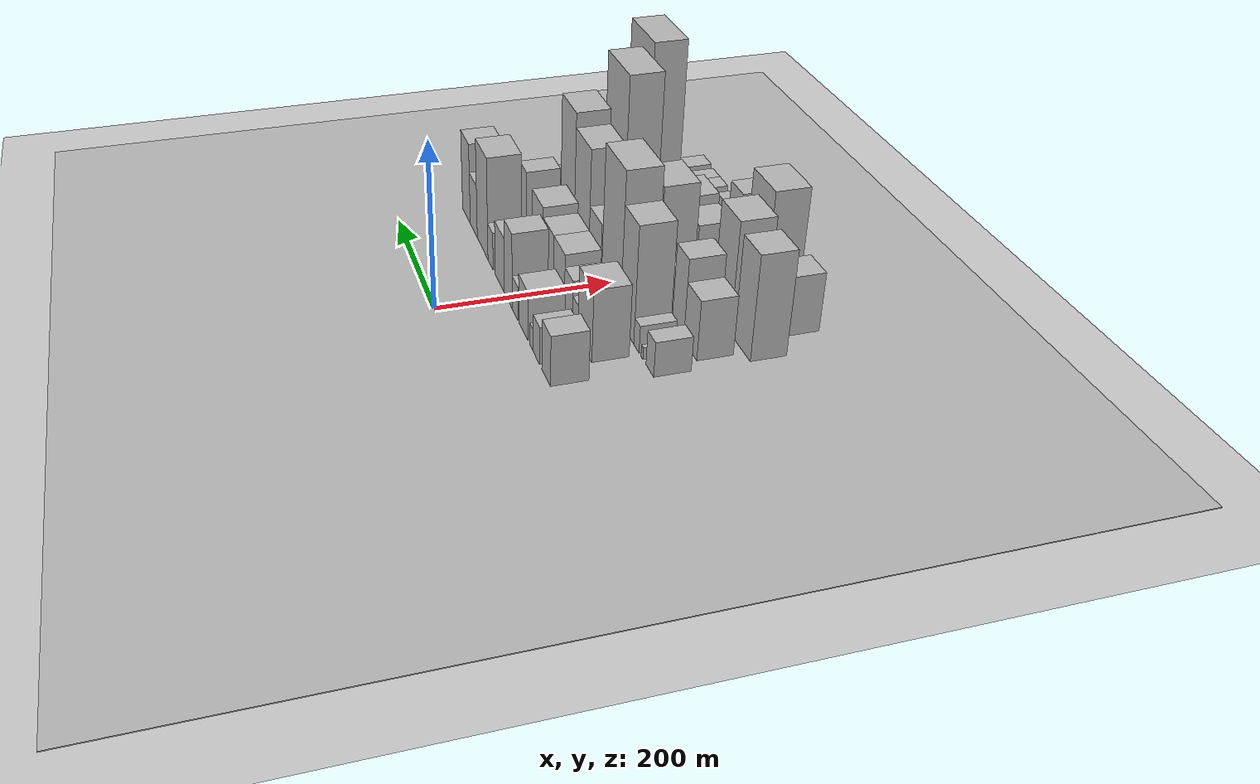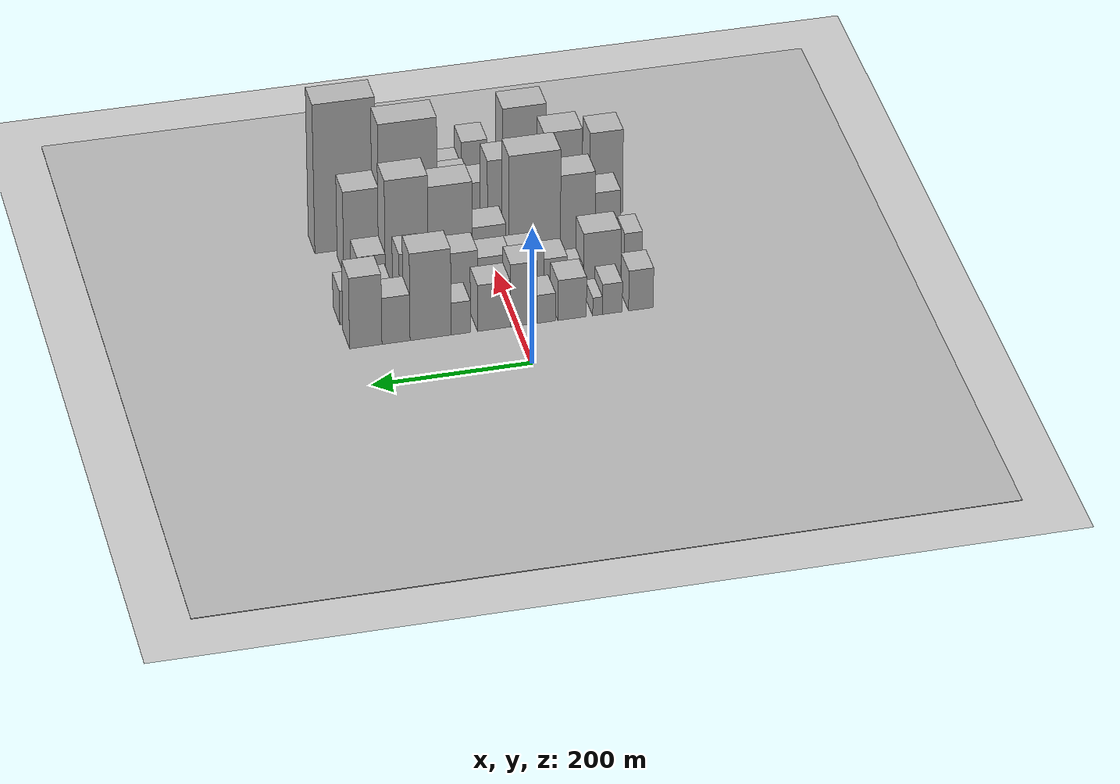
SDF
<sdf version="1.6">
 <world name="default">
  <include><name>ground_plane_1</name><uri>model://HANNAS_ground_plane</uri></include>
  <include>
   <name>ground_plane_2</name>
   <uri>model://HANNAS_ground_plane</uri>
   <pose>100 0 0  0 0 0</pose>
  </include>
  <model name="building_21">
   <static>1</static>
   <pose>100.0000 -155.4056 0 0.000000 0.000000 0.000000</pose>
   <link name="link">
    <pose>0 0 30.00 0 0 0</pose>
    <collision name="collision"><geometry><box><size>40.0000 31.2315 60.0000</size></box></geometry></collision>
    <visual name="visual">
     <cast_shadows>0</cast_shadows>
     <geometry><box><size>40.0000 31.2315 60.0000</size></box></geometry>
     <material>
      <script>
       <uri>model://HANNAS_wall/materials/scripts</uri>
       <uri>model://HANNAS_wall/materials/textures</uri>
       <name>vrc/HANNAS_wall</name>
      </script>
     </material>
    </visual>
   </link>
  </model>
  <model name="building_22">
   <static>1</static>
   <pose>100.0000 -119.2429 0 0.000000 0.000000 0.000000</pose>
   <link name="link">
    <pose>0 0 22.50 0 0 0</pose>
    <collision name="collision"><geometry><box><size>40.0000 25.0939 45.0000</size></box></geometry></collision>
    <visual name="visual">
     <cast_shadows>0</cast_shadows>
     <geometry><box><size>40.0000 25.0939 45.0000</size></box></geometry>
     <material>
      <script>
       <uri>model://HANNAS_wall/materials/scripts</uri>
       <uri>model://HANNAS_wall/materials/textures</uri>
       <name>vrc/HANNAS_wall</name>
      </script>
     </material>
    </visual>
   </link>
  </model>
  <model name="building_23">
   <static>1</static>
   <pose>100.0000 -100.5905 0 0.000000 0.000000 0.000000</pose>
   <link name="link">
    <pose>0 0 13.50 0 0 0</pose>
    <collision name="collision"><geometry><box><size>40.0000 12.2109 27.0000</size></box></geometry></collision>
    <visual name="visual">
     <cast_shadows>0</cast_shadows>
     <geometry><box><size>40.0000 12.2109 27.0000</size></box></geometry>
     <material>
      <script>
       <uri>model://HANNAS_wall/materials/scripts</uri>
       <uri>model://HANNAS_wall/materials/textures</uri>
       <name>vrc/HANNAS_wall</name>
      </script>
     </material>
    </visual>
   </link>
  </model>
  <model name="building_24">
   <static>1</static>
   <pose>100.0000 -68.5323 0 0.000000 0.000000 0.000000</pose>
   <link name="link">
    <pose>0 0 30.00 0 0 0</pose>
    <collision name="collision"><geometry><box><size>40.0000 35.9056 60.0000</size></box></geometry></collision>
    <visual name="visual">
     <cast_shadows>0</cast_shadows>
     <geometry><box><size>40.0000 35.9056 60.0000</size></box></geometry>
     <material>
      <script>
       <uri>model://HANNAS_wall/materials/scripts</uri>
       <uri>model://HANNAS_wall/materials/textures</uri>
       <name>vrc/HANNAS_wall</name>
      </script>
     </material>
    </visual>
   </link>
  </model>
  <model name="building_25">
   <static>1</static>
   <pose>100.0000 -35.7939 0 0.000000 0.000000 0.000000</pose>
   <link name="link">
    <pose>0 0 21.00 0 0 0</pose>
    <collision name="collision"><geometry><box><size>40.0000 23.5713 42.0000</size></box></geometry></collision>
    <visual name="visual">
     <cast_shadows>0</cast_shadows>
     <geometry><box><size>40.0000 23.5713 42.0000</size></box></geometry>
     <material>
      <script>
       <uri>model://HANNAS_wall/materials/scripts</uri>
       <uri>model://HANNAS_wall/materials/textures</uri>
       <name>vrc/HANNAS_wall</name>
      </script>
     </material>
    </visual>
   </link>
  </model>
  <model name="building_26">
   <static>1</static>
   <pose>100.0000 -7.3441 0 0.000000 0.000000 0.000000</pose>
   <link name="link">
    <pose>0 0 46.50 0 0 0</pose>
    <collision name="collision"><geometry><box><size>40.0000 33.3283 93.0000</size></box></geometry></collision>
    <visual name="visual">
     <cast_shadows>0</cast_shadows>
     <geometry><box><size>40.0000 33.3283 93.0000</size></box></geometry>
     <material>
      <script>
       <uri>model://HANNAS_wall/materials/scripts</uri>
       <uri>model://HANNAS_wall/materials/textures</uri>
       <name>vrc/HANNAS_wall</name>
      </script>
     </material>
    </visual>
   </link>
  </model>
  <model name="building_27">
   <static>1</static>
   <pose>100.0000 29.8711 0 0.000000 0.000000 0.000000</pose>
   <link name="link">
    <pose>0 0 34.50 0 0 0</pose>
    <collision name="collision"><geometry><box><size>40.0000 41.1020 69.0000</size></box></geometry></collision>
    <visual name="visual">
     <cast_shadows>0</cast_shadows>
     <geometry><box><size>40.0000 41.1020 69.0000</size></box></geometry>
     <material>
      <script>
       <uri>model://HANNAS_wall/materials/scripts</uri>
       <uri>model://HANNAS_wall/materials/textures</uri>
       <name>vrc/HANNAS_wall</name>
      </script>
     </material>
    </visual>
   </link>
  </model>
  <model name="building_28">
   <static>1</static>
   <pose>100.0000 71.5119 0 0.000000 0.000000 0.000000</pose>
   <link name="link">
    <pose>0 0 24.00 0 0 0</pose>
    <collision name="collision"><geometry><box><size>40.0000 24.1797 48.0000</size></box></geometry></collision>
    <visual name="visual">
     <cast_shadows>0</cast_shadows>
     <geometry><box><size>40.0000 24.1797 48.0000</size></box></geometry>
     <material>
      <script>
       <uri>model://HANNAS_wall/materials/scripts</uri>
       <uri>model://HANNAS_wall/materials/textures</uri>
       <name>vrc/HANNAS_wall</name>
      </script>
     </material>
    </visual>
   </link>
  </model>
  <model name="building_29">
   <static>1</static>
   <pose>100.0000 109.2819 0 0.000000 0.000000 0.000000</pose>
   <link name="link">
    <pose>0 0 64.50 0 0 0</pose>
    <collision name="collision"><geometry><box><size>40.0000 51.3603 129.0000</size></box></geometry></collision>
    <visual name="visual">
     <cast_shadows>0</cast_shadows>
     <geometry><box><size>40.0000 51.3603 129.0000</size></box></geometry>
     <material>
      <script>
       <uri>model://HANNAS_wall/materials/scripts</uri>
       <uri>model://HANNAS_wall/materials/textures</uri>
       <name>vrc/HANNAS_wall</name>
      </script>
     </material>
    </visual>
   </link>
  </model>
  <model name="building_30">
   <static>1</static>
   <pose>100.0000 152.5103 0 0.000000 0.000000 0.000000</pose>
   <link name="link">
    <pose>0 0 34.50 0 0 0</pose>
    <collision name="collision"><geometry><box><size>40.0000 35.0965 69.0000</size></box></geometry></collision>
    <visual name="visual">
     <cast_shadows>0</cast_shadows>
     <geometry><box><size>40.0000 35.0965 69.0000</size></box></geometry>
     <material>
      <script>
       <uri>model://HANNAS_wall/materials/scripts</uri>
       <uri>model://HANNAS_wall/materials/textures</uri>
       <name>vrc/HANNAS_wall</name>
      </script>
     </material>
    </visual>
   </link>
  </model>
  <model name="building_31">
   <static>1</static>
   <pose>100.0000 190.2256 0 0.000000 0.000000 0.000000</pose>
   <link name="link">
    <pose>0 0 52.50 0 0 0</pose>
    <collision name="collision"><geometry><box><size>40.0000 40.3340 105.0000</size></box></geometry></collision>
    <visual name="visual">
     <cast_shadows>0</cast_shadows>
     <geometry><box><size>40.0000 40.3340 105.0000</size></box></geometry>
     <material>
      <script>
       <uri>model://HANNAS_wall/materials/scripts</uri>
       <uri>model://HANNAS_wall/materials/textures</uri>
       <name>vrc/HANNAS_wall</name>
      </script>
     </material>
    </visual>
   </link>
  </model>
  <model name="building_71">
   <static>1</static>
   <pose>152.0000 -118.9052 0 0.000000 0.000000 0.000000</pose>
   <link name="link">
    <pose>0 0 43.50 0 0 0</pose>
    <collision name="collision"><geometry><box><size>40.0000 47.4757 87.0000</size></box></geometry></collision>
    <visual name="visual">
     <cast_shadows>0</cast_shadows>
     <geometry><box><size>40.0000 47.4757 87.0000</size></box></geometry>
     <material>
      <script>
       <uri>model://HANNAS_wall/materials/scripts</uri>
       <uri>model://HANNAS_wall/materials/textures</uri>
       <name>vrc/HANNAS_wall</name>
      </script>
     </material>
    </visual>
   </link>
  </model>
  <model name="building_72">
   <static>1</static>
   <pose>152.0000 -85.0644 0 0.000000 0.000000 0.000000</pose>
   <link name="link">
    <pose>0 0 19.50 0 0 0</pose>
    <collision name="collision"><geometry><box><size>40.0000 20.2058 39.0000</size></box></geometry></collision>
    <visual name="visual">
     <cast_shadows>0</cast_shadows>
     <geometry><box><size>40.0000 20.2058 39.0000</size></box></geometry>
     <material>
      <script>
       <uri>model://HANNAS_wall/materials/scripts</uri>
       <uri>model://HANNAS_wall/materials/textures</uri>
       <name>vrc/HANNAS_wall</name>
      </script>
     </material>
    </visual>
   </link>
  </model>
  <model name="building_73">
   <static>1</static>
   <pose>152.0000 -60.2462 0 0.000000 0.000000 0.000000</pose>
   <link name="link">
    <pose>0 0 28.50 0 0 0</pose>
    <collision name="collision"><geometry><box><size>40.0000 29.4305 57.0000</size></box></geometry></collision>
    <visual name="visual">
     <cast_shadows>0</cast_shadows>
     <geometry><box><size>40.0000 29.4305 57.0000</size></box></geometry>
     <material>
      <script>
       <uri>model://HANNAS_wall/materials/scripts</uri>
       <uri>model://HANNAS_wall/materials/textures</uri>
       <name>vrc/HANNAS_wall</name>
      </script>
     </material>
    </visual>
   </link>
  </model>
  <model name="building_74">
   <static>1</static>
   <pose>152.0000 -24.3609 0 0.000000 0.000000 0.000000</pose>
   <link name="link">
    <pose>0 0 36.00 0 0 0</pose>
    <collision name="collision"><geometry><box><size>40.0000 42.3402 72.0000</size></box></geometry></collision>
    <visual name="visual">
     <cast_shadows>0</cast_shadows>
     <geometry><box><size>40.0000 42.3402 72.0000</size></box></geometry>
     <material>
      <script>
       <uri>model://HANNAS_wall/materials/scripts</uri>
       <uri>model://HANNAS_wall/materials/textures</uri>
       <name>vrc/HANNAS_wall</name>
      </script>
     </material>
    </visual>
   </link>
  </model>
  <model name="building_75">
   <static>1</static>
   <pose>152.0000 17.4830 0 0.000000 0.000000 0.000000</pose>
   <link name="link">
    <pose>0 0 36.00 0 0 0</pose>
    <collision name="collision"><geometry><box><size>40.0000 41.3475 72.0000</size></box></geometry></collision>
    <visual name="visual">
     <cast_shadows>0</cast_shadows>
     <geometry><box><size>40.0000 41.3475 72.0000</size></box></geometry>
     <material>
      <script>
       <uri>model://HANNAS_wall/materials/scripts</uri>
       <uri>model://HANNAS_wall/materials/textures</uri>
       <name>vrc/HANNAS_wall</name>
      </script>
     </material>
    </visual>
   </link>
  </model>
  <model name="building_76">
   <static>1</static>
   <pose>152.0000 60.8642 0 0.000000 0.000000 0.000000</pose>
   <link name="link">
    <pose>0 0 42.00 0 0 0</pose>
    <collision name="collision"><geometry><box><size>40.0000 45.4149 84.0000</size></box></geometry></collision>
    <visual name="visual">
     <cast_shadows>0</cast_shadows>
     <geometry><box><size>40.0000 45.4149 84.0000</size></box></geometry>
     <material>
      <script>
       <uri>model://HANNAS_wall/materials/scripts</uri>
       <uri>model://HANNAS_wall/materials/textures</uri>
       <name>vrc/HANNAS_wall</name>
      </script>
     </material>
    </visual>
   </link>
  </model>
  <model name="building_77">
   <static>1</static>
   <pose>152.0000 94.1889 0 0.000000 0.000000 0.000000</pose>
   <link name="link">
    <pose>0 0 12.00 0 0 0</pose>
    <collision name="collision"><geometry><box><size>40.0000 11.2345 24.0000</size></box></geometry></collision>
    <visual name="visual">
     <cast_shadows>0</cast_shadows>
     <geometry><box><size>40.0000 11.2345 24.0000</size></box></geometry>
     <material>
      <script>
       <uri>model://HANNAS_wall/materials/scripts</uri>
       <uri>model://HANNAS_wall/materials/textures</uri>
       <name>vrc/HANNAS_wall</name>
      </script>
     </material>
    </visual>
   </link>
  </model>
  <model name="building_78">
   <static>1</static>
   <pose>152.0000 121.7195 0 0.000000 0.000000 0.000000</pose>
   <link name="link">
    <pose>0 0 46.50 0 0 0</pose>
    <collision name="collision"><geometry><box><size>40.0000 29.8268 93.0000</size></box></geometry></collision>
    <visual name="visual">
     <cast_shadows>0</cast_shadows>
     <geometry><box><size>40.0000 29.8268 93.0000</size></box></geometry>
     <material>
      <script>
       <uri>model://HANNAS_wall/materials/scripts</uri>
       <uri>model://HANNAS_wall/materials/textures</uri>
       <name>vrc/HANNAS_wall</name>
      </script>
     </material>
    </visual>
   </link>
  </model>
  <model name="building_79">
   <static>1</static>
   <pose>152.0000 160.8110 0 0.000000 0.000000 0.000000</pose>
   <link name="link">
    <pose>0 0 27.00 0 0 0</pose>
    <collision name="collision"><geometry><box><size>40.0000 28.3562 54.0000</size></box></geometry></collision>
    <visual name="visual">
     <cast_shadows>0</cast_shadows>
     <geometry><box><size>40.0000 28.3562 54.0000</size></box></geometry>
     <material>
      <script>
       <uri>model://HANNAS_wall/materials/scripts</uri>
       <uri>model://HANNAS_wall/materials/textures</uri>
       <name>vrc/HANNAS_wall</name>
      </script>
     </material>
    </visual>
   </link>
  </model>
  <model name="building_80">
   <static>1</static>
   <pose>152.0000 197.2991 0 0.000000 0.000000 0.000000</pose>
   <link name="link">
    <pose>0 0 25.50 0 0 0</pose>
    <collision name="collision"><geometry><box><size>40.0000 28.6200 51.0000</size></box></geometry></collision>
    <visual name="visual">
     <cast_shadows>0</cast_shadows>
     <geometry><box><size>40.0000 28.6200 51.0000</size></box></geometry>
     <material>
      <script>
       <uri>model://HANNAS_wall/materials/scripts</uri>
       <uri>model://HANNAS_wall/materials/textures</uri>
       <name>vrc/HANNAS_wall</name>
      </script>
     </material>
    </visual>
   </link>
  </model>
  <model name="building_124">
   <static>1</static>
   <pose>204.0000 -171.8437 0 0.000000 0.000000 0.000000</pose>
   <link name="link">
    <pose>0 0 21.00 0 0 0</pose>
    <collision name="collision"><geometry><box><size>40.0000 22.9323 42.0000</size></box></geometry></collision>
    <visual name="visual">
     <cast_shadows>0</cast_shadows>
     <geometry><box><size>40.0000 22.9323 42.0000</size></box></geometry>
     <material>
      <script>
       <uri>model://HANNAS_wall/materials/scripts</uri>
       <uri>model://HANNAS_wall/materials/textures</uri>
       <name>vrc/HANNAS_wall</name>
      </script>
     </material>
    </visual>
   </link>
  </model>
  <model name="building_125">
   <static>1</static>
   <pose>204.0000 -148.2840 0 0.000000 0.000000 0.000000</pose>
   <link name="link">
    <pose>0 0 7.50 0 0 0</pose>
    <collision name="collision"><geometry><box><size>40.0000 6.1870 15.0000</size></box></geometry></collision>
    <visual name="visual">
     <cast_shadows>0</cast_shadows>
     <geometry><box><size>40.0000 6.1870 15.0000</size></box></geometry>
     <material>
      <script>
       <uri>model://HANNAS_wall/materials/scripts</uri>
       <uri>model://HANNAS_wall/materials/textures</uri>
       <name>vrc/HANNAS_wall</name>
      </script>
     </material>
    </visual>
   </link>
  </model>
  <model name="building_126">
   <static>1</static>
   <pose>204.0000 -130.8591 0 0.000000 0.000000 0.000000</pose>
   <link name="link">
    <pose>0 0 16.50 0 0 0</pose>
    <collision name="collision"><geometry><box><size>40.0000 16.6630 33.0000</size></box></geometry></collision>
    <visual name="visual">
     <cast_shadows>0</cast_shadows>
     <geometry><box><size>40.0000 16.6630 33.0000</size></box></geometry>
     <material>
      <script>
       <uri>model://HANNAS_wall/materials/scripts</uri>
       <uri>model://HANNAS_wall/materials/textures</uri>
       <name>vrc/HANNAS_wall</name>
      </script>
     </material>
    </visual>
   </link>
  </model>
  <model name="building_127">
   <static>1</static>
   <pose>204.0000 -100.5731 0 0.000000 0.000000 0.000000</pose>
   <link name="link">
    <pose>0 0 70.50 0 0 0</pose>
    <collision name="collision"><geometry><box><size>40.0000 43.9089 141.0000</size></box></geometry></collision>
    <visual name="visual">
     <cast_shadows>0</cast_shadows>
     <geometry><box><size>40.0000 43.9089 141.0000</size></box></geometry>
     <material>
      <script>
       <uri>model://HANNAS_wall/materials/scripts</uri>
       <uri>model://HANNAS_wall/materials/textures</uri>
       <name>vrc/HANNAS_wall</name>
      </script>
     </material>
    </visual>
   </link>
  </model>
  <model name="building_128">
   <static>1</static>
   <pose>204.0000 -46.0303 0 0.000000 0.000000 0.000000</pose>
   <link name="link">
    <pose>0 0 90.00 0 0 0</pose>
    <collision name="collision"><geometry><box><size>40.0000 65.1767 180.0000</size></box></geometry></collision>
    <visual name="visual">
     <cast_shadows>0</cast_shadows>
     <geometry><box><size>40.0000 65.1767 180.0000</size></box></geometry>
     <material>
      <script>
       <uri>model://HANNAS_wall/materials/scripts</uri>
       <uri>model://HANNAS_wall/materials/textures</uri>
       <name>vrc/HANNAS_wall</name>
      </script>
     </material>
    </visual>
   </link>
  </model>
  <model name="building_129">
   <static>1</static>
   <pose>204.0000 11.7722 0 0.000000 0.000000 0.000000</pose>
   <link name="link">
    <pose>0 0 40.50 0 0 0</pose>
    <collision name="collision"><geometry><box><size>40.0000 42.4283 81.0000</size></box></geometry></collision>
    <visual name="visual">
     <cast_shadows>0</cast_shadows>
     <geometry><box><size>40.0000 42.4283 81.0000</size></box></geometry>
     <material>
      <script>
       <uri>model://HANNAS_wall/materials/scripts</uri>
       <uri>model://HANNAS_wall/materials/textures</uri>
       <name>vrc/HANNAS_wall</name>
      </script>
     </material>
    </visual>
   </link>
  </model>
  <model name="building_130">
   <static>1</static>
   <pose>204.0000 60.9299 0 0.000000 0.000000 0.000000</pose>
   <link name="link">
    <pose>0 0 75.00 0 0 0</pose>
    <collision name="collision"><geometry><box><size>40.0000 55.8872 150.0000</size></box></geometry></collision>
    <visual name="visual">
     <cast_shadows>0</cast_shadows>
     <geometry><box><size>40.0000 55.8872 150.0000</size></box></geometry>
     <material>
      <script>
       <uri>model://HANNAS_wall/materials/scripts</uri>
       <uri>model://HANNAS_wall/materials/textures</uri>
       <name>vrc/HANNAS_wall</name>
      </script>
     </material>
    </visual>
   </link>
  </model>
  <model name="building_131">
   <static>1</static>
   <pose>204.0000 115.9007 0 0.000000 0.000000 0.000000</pose>
   <link name="link">
    <pose>0 0 84.00 0 0 0</pose>
    <collision name="collision"><geometry><box><size>40.0000 54.0545 168.0000</size></box></geometry></collision>
    <visual name="visual">
     <cast_shadows>0</cast_shadows>
     <geometry><box><size>40.0000 54.0545 168.0000</size></box></geometry>
     <material>
      <script>
       <uri>model://HANNAS_wall/materials/scripts</uri>
       <uri>model://HANNAS_wall/materials/textures</uri>
       <name>vrc/HANNAS_wall</name>
      </script>
     </material>
    </visual>
   </link>
  </model>
  <model name="building_132">
   <static>1</static>
   <pose>204.0000 160.6650 0 0.000000 0.000000 0.000000</pose>
   <link name="link">
    <pose>0 0 30.00 0 0 0</pose>
    <collision name="collision"><geometry><box><size>40.0000 35.4740 60.0000</size></box></geometry></collision>
    <visual name="visual">
     <cast_shadows>0</cast_shadows>
     <geometry><box><size>40.0000 35.4740 60.0000</size></box></geometry>
     <material>
      <script>
       <uri>model://HANNAS_wall/materials/scripts</uri>
       <uri>model://HANNAS_wall/materials/textures</uri>
       <name>vrc/HANNAS_wall</name>
      </script>
     </material>
    </visual>
   </link>
  </model>
  <model name="building_178">
   <static>1</static>
   <pose>256.0000 -149.2890 0 0.000000 0.000000 0.000000</pose>
   <link name="link">
    <pose>0 0 36.00 0 0 0</pose>
    <collision name="collision"><geometry><box><size>40.0000 37.3625 72.0000</size></box></geometry></collision>
    <visual name="visual">
     <cast_shadows>0</cast_shadows>
     <geometry><box><size>40.0000 37.3625 72.0000</size></box></geometry>
     <material>
      <script>
       <uri>model://HANNAS_wall/materials/scripts</uri>
       <uri>model://HANNAS_wall/materials/textures</uri>
       <name>vrc/HANNAS_wall</name>
      </script>
     </material>
    </visual>
   </link>
  </model>
  <model name="building_179">
   <static>1</static>
   <pose>256.0000 -113.4923 0 0.000000 0.000000 0.000000</pose>
   <link name="link">
    <pose>0 0 49.50 0 0 0</pose>
    <collision name="collision"><geometry><box><size>40.0000 34.2308 99.0000</size></box></geometry></collision>
    <visual name="visual">
     <cast_shadows>0</cast_shadows>
     <geometry><box><size>40.0000 34.2308 99.0000</size></box></geometry>
     <material>
      <script>
       <uri>model://HANNAS_wall/materials/scripts</uri>
       <uri>model://HANNAS_wall/materials/textures</uri>
       <name>vrc/HANNAS_wall</name>
      </script>
     </material>
    </visual>
   </link>
  </model>
  <model name="building_180">
   <static>1</static>
   <pose>256.0000 -80.3192 0 0.000000 0.000000 0.000000</pose>
   <link name="link">
    <pose>0 0 31.50 0 0 0</pose>
    <collision name="collision"><geometry><box><size>40.0000 32.1155 63.0000</size></box></geometry></collision>
    <visual name="visual">
     <cast_shadows>0</cast_shadows>
     <geometry><box><size>40.0000 32.1155 63.0000</size></box></geometry>
     <material>
      <script>
       <uri>model://HANNAS_wall/materials/scripts</uri>
       <uri>model://HANNAS_wall/materials/textures</uri>
       <name>vrc/HANNAS_wall</name>
      </script>
     </material>
    </visual>
   </link>
  </model>
  <model name="building_181">
   <static>1</static>
   <pose>256.0000 -58.3119 0 0.000000 0.000000 0.000000</pose>
   <link name="link">
    <pose>0 0 13.50 0 0 0</pose>
    <collision name="collision"><geometry><box><size>40.0000 11.8991 27.0000</size></box></geometry></collision>
    <visual name="visual">
     <cast_shadows>0</cast_shadows>
     <geometry><box><size>40.0000 11.8991 27.0000</size></box></geometry>
     <material>
      <script>
       <uri>model://HANNAS_wall/materials/scripts</uri>
       <uri>model://HANNAS_wall/materials/textures</uri>
       <name>vrc/HANNAS_wall</name>
      </script>
     </material>
    </visual>
   </link>
  </model>
  <model name="building_182">
   <static>1</static>
   <pose>256.0000 -25.1957 0 0.000000 0.000000 0.000000</pose>
   <link name="link">
    <pose>0 0 70.50 0 0 0</pose>
    <collision name="collision"><geometry><box><size>40.0000 54.3334 141.0000</size></box></geometry></collision>
    <visual name="visual">
     <cast_shadows>0</cast_shadows>
     <geometry><box><size>40.0000 54.3334 141.0000</size></box></geometry>
     <material>
      <script>
       <uri>model://HANNAS_wall/materials/scripts</uri>
       <uri>model://HANNAS_wall/materials/textures</uri>
       <name>vrc/HANNAS_wall</name>
      </script>
     </material>
    </visual>
   </link>
  </model>
  <model name="building_183">
   <static>1</static>
   <pose>256.0000 22.9023 0 0.000000 0.000000 0.000000</pose>
   <link name="link">
    <pose>0 0 22.50 0 0 0</pose>
    <collision name="collision"><geometry><box><size>40.0000 23.8626 45.0000</size></box></geometry></collision>
    <visual name="visual">
     <cast_shadows>0</cast_shadows>
     <geometry><box><size>40.0000 23.8626 45.0000</size></box></geometry>
     <material>
      <script>
       <uri>model://HANNAS_wall/materials/scripts</uri>
       <uri>model://HANNAS_wall/materials/textures</uri>
       <name>vrc/HANNAS_wall</name>
      </script>
     </material>
    </visual>
   </link>
  </model>
  <model name="building_184">
   <static>1</static>
   <pose>256.0000 50.1579 0 0.000000 0.000000 0.000000</pose>
   <link name="link">
    <pose>0 0 30.00 0 0 0</pose>
    <collision name="collision"><geometry><box><size>40.0000 30.6486 60.0000</size></box></geometry></collision>
    <visual name="visual">
     <cast_shadows>0</cast_shadows>
     <geometry><box><size>40.0000 30.6486 60.0000</size></box></geometry>
     <material>
      <script>
       <uri>model://HANNAS_wall/materials/scripts</uri>
       <uri>model://HANNAS_wall/materials/textures</uri>
       <name>vrc/HANNAS_wall</name>
      </script>
     </material>
    </visual>
   </link>
  </model>
  <model name="building_185">
   <static>1</static>
   <pose>256.0000 102.4552 0 0.000000 0.000000 0.000000</pose>
   <link name="link">
    <pose>0 0 108.00 0 0 0</pose>
    <collision name="collision"><geometry><box><size>40.0000 73.9461 216.0000</size></box></geometry></collision>
    <visual name="visual">
     <cast_shadows>0</cast_shadows>
     <geometry><box><size>40.0000 73.9461 216.0000</size></box></geometry>
     <material>
      <script>
       <uri>model://HANNAS_wall/materials/scripts</uri>
       <uri>model://HANNAS_wall/materials/textures</uri>
       <name>vrc/HANNAS_wall</name>
      </script>
     </material>
    </visual>
   </link>
  </model>
  <model name="building_186">
   <static>1</static>
   <pose>256.0000 161.9190 0 0.000000 0.000000 0.000000</pose>
   <link name="link">
    <pose>0 0 61.50 0 0 0</pose>
    <collision name="collision"><geometry><box><size>40.0000 44.9815 123.0000</size></box></geometry></collision>
    <visual name="visual">
     <cast_shadows>0</cast_shadows>
     <geometry><box><size>40.0000 44.9815 123.0000</size></box></geometry>
     <material>
      <script>
       <uri>model://HANNAS_wall/materials/scripts</uri>
       <uri>model://HANNAS_wall/materials/textures</uri>
       <name>vrc/HANNAS_wall</name>
      </script>
     </material>
    </visual>
   </link>
  </model>
  <model name="building_225">
   <static>1</static>
   <pose>308.0000 -162.4692 0 0.000000 0.000000 0.000000</pose>
   <link name="link">
    <pose>0 0 63.00 0 0 0</pose>
    <collision name="collision"><geometry><box><size>40.0000 42.1920 126.0000</size></box></geometry></collision>
    <visual name="visual">
     <cast_shadows>0</cast_shadows>
     <geometry><box><size>40.0000 42.1920 126.0000</size></box></geometry>
     <material>
      <script>
       <uri>model://HANNAS_wall/materials/scripts</uri>
       <uri>model://HANNAS_wall/materials/textures</uri>
       <name>vrc/HANNAS_wall</name>
      </script>
     </material>
    </visual>
   </link>
  </model>
  <model name="building_226">
   <static>1</static>
   <pose>308.0000 -136.3173 0 0.000000 0.000000 0.000000</pose>
   <link name="link">
    <pose>0 0 10.50 0 0 0</pose>
    <collision name="collision"><geometry><box><size>40.0000 10.1119 21.0000</size></box></geometry></collision>
    <visual name="visual">
     <cast_shadows>0</cast_shadows>
     <geometry><box><size>40.0000 10.1119 21.0000</size></box></geometry>
     <material>
      <script>
       <uri>model://HANNAS_wall/materials/scripts</uri>
       <uri>model://HANNAS_wall/materials/textures</uri>
       <name>vrc/HANNAS_wall</name>
      </script>
     </material>
    </visual>
   </link>
  </model>
  <model name="building_227">
   <static>1</static>
   <pose>308.0000 -106.7428 0 0.000000 0.000000 0.000000</pose>
   <link name="link">
    <pose>0 0 67.50 0 0 0</pose>
    <collision name="collision"><geometry><box><size>40.0000 49.0371 135.0000</size></box></geometry></collision>
    <visual name="visual">
     <cast_shadows>0</cast_shadows>
     <geometry><box><size>40.0000 49.0371 135.0000</size></box></geometry>
     <material>
      <script>
       <uri>model://HANNAS_wall/materials/scripts</uri>
       <uri>model://HANNAS_wall/materials/textures</uri>
       <name>vrc/HANNAS_wall</name>
      </script>
     </material>
    </visual>
   </link>
  </model>
  <model name="building_228">
   <static>1</static>
   <pose>308.0000 -70.8927 0 0.000000 0.000000 0.000000</pose>
   <link name="link">
    <pose>0 0 19.50 0 0 0</pose>
    <collision name="collision"><geometry><box><size>40.0000 22.6629 39.0000</size></box></geometry></collision>
    <visual name="visual">
     <cast_shadows>0</cast_shadows>
     <geometry><box><size>40.0000 22.6629 39.0000</size></box></geometry>
     <material>
      <script>
       <uri>model://HANNAS_wall/materials/scripts</uri>
       <uri>model://HANNAS_wall/materials/textures</uri>
       <name>vrc/HANNAS_wall</name>
      </script>
     </material>
    </visual>
   </link>
  </model>
  <model name="building_229">
   <static>1</static>
   <pose>308.0000 -45.1556 0 0.000000 0.000000 0.000000</pose>
   <link name="link">
    <pose>0 0 19.50 0 0 0</pose>
    <collision name="collision"><geometry><box><size>40.0000 22.8113 39.0000</size></box></geometry></collision>
    <visual name="visual">
     <cast_shadows>0</cast_shadows>
     <geometry><box><size>40.0000 22.8113 39.0000</size></box></geometry>
     <material>
      <script>
       <uri>model://HANNAS_wall/materials/scripts</uri>
       <uri>model://HANNAS_wall/materials/textures</uri>
       <name>vrc/HANNAS_wall</name>
      </script>
     </material>
    </visual>
   </link>
  </model>
  <model name="building_230">
   <static>1</static>
   <pose>308.0000 -8.1657 0 0.000000 0.000000 0.000000</pose>
   <link name="link">
    <pose>0 0 37.50 0 0 0</pose>
    <collision name="collision"><geometry><box><size>40.0000 43.1686 75.0000</size></box></geometry></collision>
    <visual name="visual">
     <cast_shadows>0</cast_shadows>
     <geometry><box><size>40.0000 43.1686 75.0000</size></box></geometry>
     <material>
      <script>
       <uri>model://HANNAS_wall/materials/scripts</uri>
       <uri>model://HANNAS_wall/materials/textures</uri>
       <name>vrc/HANNAS_wall</name>
      </script>
     </material>
    </visual>
   </link>
  </model>
  <model name="building_231">
   <static>1</static>
   <pose>308.0000 36.8905 0 0.000000 0.000000 0.000000</pose>
   <link name="link">
    <pose>0 0 43.50 0 0 0</pose>
    <collision name="collision"><geometry><box><size>40.0000 46.9438 87.0000</size></box></geometry></collision>
    <visual name="visual">
     <cast_shadows>0</cast_shadows>
     <geometry><box><size>40.0000 46.9438 87.0000</size></box></geometry>
     <material>
      <script>
       <uri>model://HANNAS_wall/materials/scripts</uri>
       <uri>model://HANNAS_wall/materials/textures</uri>
       <name>vrc/HANNAS_wall</name>
      </script>
     </material>
    </visual>
   </link>
  </model>
  <model name="building_232">
   <static>1</static>
   <pose>308.0000 73.6166 0 0.000000 0.000000 0.000000</pose>
   <link name="link">
    <pose>0 0 24.00 0 0 0</pose>
    <collision name="collision"><geometry><box><size>40.0000 26.5083 48.0000</size></box></geometry></collision>
    <visual name="visual">
     <cast_shadows>0</cast_shadows>
     <geometry><box><size>40.0000 26.5083 48.0000</size></box></geometry>
     <material>
      <script>
       <uri>model://HANNAS_wall/materials/scripts</uri>
       <uri>model://HANNAS_wall/materials/textures</uri>
       <name>vrc/HANNAS_wall</name>
      </script>
     </material>
    </visual>
   </link>
  </model>
  <model name="building_233">
   <static>1</static>
   <pose>308.0000 104.3659 0 0.000000 0.000000 0.000000</pose>
   <link name="link">
    <pose>0 0 30.00 0 0 0</pose>
    <collision name="collision"><geometry><box><size>40.0000 34.9903 60.0000</size></box></geometry></collision>
    <visual name="visual">
     <cast_shadows>0</cast_shadows>
     <geometry><box><size>40.0000 34.9903 60.0000</size></box></geometry>
     <material>
      <script>
       <uri>model://HANNAS_wall/materials/scripts</uri>
       <uri>model://HANNAS_wall/materials/textures</uri>
       <name>vrc/HANNAS_wall</name>
      </script>
     </material>
    </visual>
   </link>
  </model>
  <model name="building_234">
   <static>1</static>
   <pose>308.0000 170.9945 0 0.000000 0.000000 0.000000</pose>
   <link name="link">
    <pose>0 0 111.00 0 0 0</pose>
    <collision name="collision"><geometry><box><size>40.0000 78.2668 222.0000</size></box></geometry></collision>
    <visual name="visual">
     <cast_shadows>0</cast_shadows>
     <geometry><box><size>40.0000 78.2668 222.0000</size></box></geometry>
     <material>
      <script>
       <uri>model://HANNAS_wall/materials/scripts</uri>
       <uri>model://HANNAS_wall/materials/textures</uri>
       <name>vrc/HANNAS_wall</name>
      </script>
     </material>
    </visual>
   </link>
  </model>
  <model name="building_274">
   <static>1</static>
   <pose>360.0000 -131.7565 0 0.000000 0.000000 0.000000</pose>
   <link name="link">
    <pose>0 0 36.00 0 0 0</pose>
    <collision name="collision"><geometry><box><size>40.0000 37.6142 72.0000</size></box></geometry></collision>
    <visual name="visual">
     <cast_shadows>0</cast_shadows>
     <geometry><box><size>40.0000 37.6142 72.0000</size></box></geometry>
     <material>
      <script>
       <uri>model://HANNAS_wall/materials/scripts</uri>
       <uri>model://HANNAS_wall/materials/textures</uri>
       <name>vrc/HANNAS_wall</name>
      </script>
     </material>
    </visual>
   </link>
  </model>
  <model name="building_275">
   <static>1</static>
   <pose>360.0000 -105.2643 0 0.000000 0.000000 0.000000</pose>
   <link name="link">
    <pose>0 0 15.00 0 0 0</pose>
    <collision name="collision"><geometry><box><size>40.0000 15.3701 30.0000</size></box></geometry></collision>
    <visual name="visual">
     <cast_shadows>0</cast_shadows>
     <geometry><box><size>40.0000 15.3701 30.0000</size></box></geometry>
     <material>
      <script>
       <uri>model://HANNAS_wall/materials/scripts</uri>
       <uri>model://HANNAS_wall/materials/textures</uri>
       <name>vrc/HANNAS_wall</name>
      </script>
     </material>
    </visual>
   </link>
  </model>
  <model name="building_276">
   <static>1</static>
   <pose>360.0000 -69.4965 0 0.000000 0.000000 0.000000</pose>
   <link name="link">
    <pose>0 0 72.00 0 0 0</pose>
    <collision name="collision"><geometry><box><size>40.0000 56.1655 144.0000</size></box></geometry></collision>
    <visual name="visual">
     <cast_shadows>0</cast_shadows>
     <geometry><box><size>40.0000 56.1655 144.0000</size></box></geometry>
     <material>
      <script>
       <uri>model://HANNAS_wall/materials/scripts</uri>
       <uri>model://HANNAS_wall/materials/textures</uri>
       <name>vrc/HANNAS_wall</name>
      </script>
     </material>
    </visual>
   </link>
  </model>
  <model name="building_277">
   <static>1</static>
   <pose>360.0000 -36.6083 0 0.000000 0.000000 0.000000</pose>
   <link name="link">
    <pose>0 0 10.50 0 0 0</pose>
    <collision name="collision"><geometry><box><size>40.0000 9.6109 21.0000</size></box></geometry></collision>
    <visual name="visual">
     <cast_shadows>0</cast_shadows>
     <geometry><box><size>40.0000 9.6109 21.0000</size></box></geometry>
     <material>
      <script>
       <uri>model://HANNAS_wall/materials/scripts</uri>
       <uri>model://HANNAS_wall/materials/textures</uri>
       <name>vrc/HANNAS_wall</name>
      </script>
     </material>
    </visual>
   </link>
  </model>
  <model name="building_278">
   <static>1</static>
   <pose>360.0000 -5.1299 0 0.000000 0.000000 0.000000</pose>
   <link name="link">
    <pose>0 0 51.00 0 0 0</pose>
    <collision name="collision"><geometry><box><size>40.0000 33.3459 102.0000</size></box></geometry></collision>
    <visual name="visual">
     <cast_shadows>0</cast_shadows>
     <geometry><box><size>40.0000 33.3459 102.0000</size></box></geometry>
     <material>
      <script>
       <uri>model://HANNAS_wall/materials/scripts</uri>
       <uri>model://HANNAS_wall/materials/textures</uri>
       <name>vrc/HANNAS_wall</name>
      </script>
     </material>
    </visual>
   </link>
  </model>
  <model name="building_279">
   <static>1</static>
   <pose>360.0000 29.3370 0 0.000000 0.000000 0.000000</pose>
   <link name="link">
    <pose>0 0 34.50 0 0 0</pose>
    <collision name="collision"><geometry><box><size>40.0000 35.5880 69.0000</size></box></geometry></collision>
    <visual name="visual">
     <cast_shadows>0</cast_shadows>
     <geometry><box><size>40.0000 35.5880 69.0000</size></box></geometry>
     <material>
      <script>
       <uri>model://HANNAS_wall/materials/scripts</uri>
       <uri>model://HANNAS_wall/materials/textures</uri>
       <name>vrc/HANNAS_wall</name>
      </script>
     </material>
    </visual>
   </link>
  </model>
  <model name="building_280">
   <static>1</static>
   <pose>360.0000 53.3553 0 0.000000 0.000000 0.000000</pose>
   <link name="link">
    <pose>0 0 7.50 0 0 0</pose>
    <collision name="collision"><geometry><box><size>40.0000 6.4486 15.0000</size></box></geometry></collision>
    <visual name="visual">
     <cast_shadows>0</cast_shadows>
     <geometry><box><size>40.0000 6.4486 15.0000</size></box></geometry>
     <material>
      <script>
       <uri>model://HANNAS_wall/materials/scripts</uri>
       <uri>model://HANNAS_wall/materials/textures</uri>
       <name>vrc/HANNAS_wall</name>
      </script>
     </material>
    </visual>
   </link>
  </model>
  <model name="building_281">
   <static>1</static>
   <pose>360.0000 73.9424 0 0.000000 0.000000 0.000000</pose>
   <link name="link">
    <pose>0 0 18.00 0 0 0</pose>
    <collision name="collision"><geometry><box><size>40.0000 18.7256 36.0000</size></box></geometry></collision>
    <visual name="visual">
     <cast_shadows>0</cast_shadows>
     <geometry><box><size>40.0000 18.7256 36.0000</size></box></geometry>
     <material>
      <script>
       <uri>model://HANNAS_wall/materials/scripts</uri>
       <uri>model://HANNAS_wall/materials/textures</uri>
       <name>vrc/HANNAS_wall</name>
      </script>
     </material>
    </visual>
   </link>
  </model>
  <model name="building_282">
   <static>1</static>
   <pose>360.0000 95.7412 0 0.000000 0.000000 0.000000</pose>
   <link name="link">
    <pose>0 0 12.00 0 0 0</pose>
    <collision name="collision"><geometry><box><size>40.0000 10.8722 24.0000</size></box></geometry></collision>
    <visual name="visual">
     <cast_shadows>0</cast_shadows>
     <geometry><box><size>40.0000 10.8722 24.0000</size></box></geometry>
     <material>
      <script>
       <uri>model://HANNAS_wall/materials/scripts</uri>
       <uri>model://HANNAS_wall/materials/textures</uri>
       <name>vrc/HANNAS_wall</name>
      </script>
     </material>
    </visual>
   </link>
  </model>
  <model name="building_283">
   <static>1</static>
   <pose>360.0000 118.4891 0 0.000000 0.000000 0.000000</pose>
   <link name="link">
    <pose>0 0 21.00 0 0 0</pose>
    <collision name="collision"><geometry><box><size>40.0000 24.6236 42.0000</size></box></geometry></collision>
    <visual name="visual">
     <cast_shadows>0</cast_shadows>
     <geometry><box><size>40.0000 24.6236 42.0000</size></box></geometry>
     <material>
      <script>
       <uri>model://HANNAS_wall/materials/scripts</uri>
       <uri>model://HANNAS_wall/materials/textures</uri>
       <name>vrc/HANNAS_wall</name>
      </script>
     </material>
    </visual>
   </link>
  </model>
  <model name="building_284">
   <static>1</static>
   <pose>360.0000 142.3511 0 0.000000 0.000000 0.000000</pose>
   <link name="link">
    <pose>0 0 21.00 0 0 0</pose>
    <collision name="collision"><geometry><box><size>40.0000 23.1005 42.0000</size></box></geometry></collision>
    <visual name="visual">
     <cast_shadows>0</cast_shadows>
     <geometry><box><size>40.0000 23.1005 42.0000</size></box></geometry>
     <material>
      <script>
       <uri>model://HANNAS_wall/materials/scripts</uri>
       <uri>model://HANNAS_wall/materials/textures</uri>
       <name>vrc/HANNAS_wall</name>
      </script>
     </material>
    </visual>
   </link>
  </model>
  <model name="building_285">
   <static>1</static>
   <pose>360.0000 172.1405 0 0.000000 0.000000 0.000000</pose>
   <link name="link">
    <pose>0 0 22.50 0 0 0</pose>
    <collision name="collision"><geometry><box><size>40.0000 26.4784 45.0000</size></box></geometry></collision>
    <visual name="visual">
     <cast_shadows>0</cast_shadows>
     <geometry><box><size>40.0000 26.4784 45.0000</size></box></geometry>
     <material>
      <script>
       <uri>model://HANNAS_wall/materials/scripts</uri>
       <uri>model://HANNAS_wall/materials/textures</uri>
       <name>vrc/HANNAS_wall</name>
      </script>
     </material>
    </visual>
   </link>
  </model>
 </world>
</sdf>
